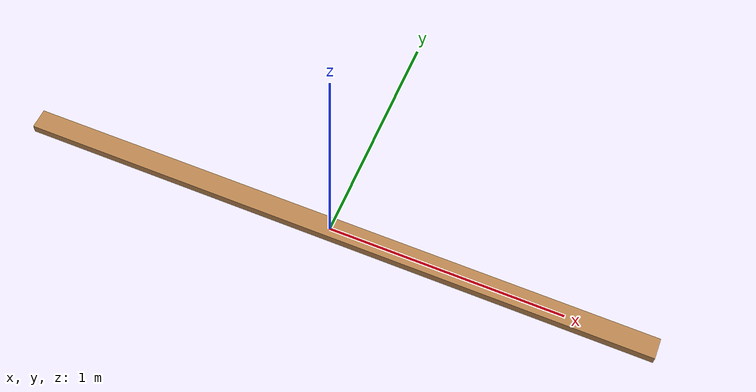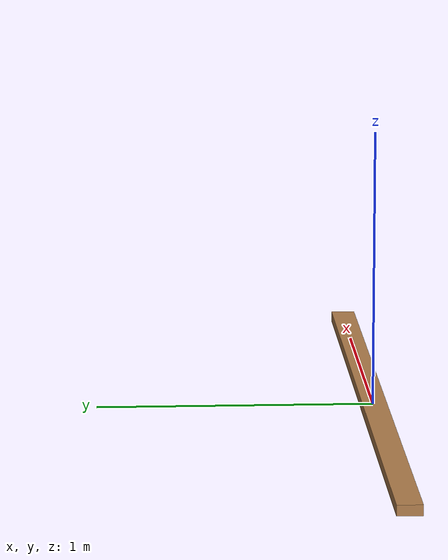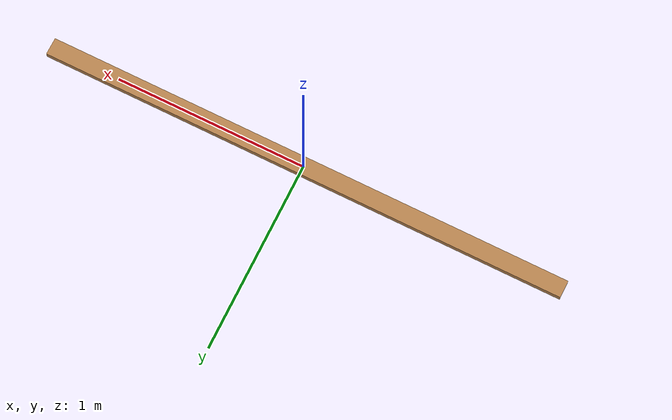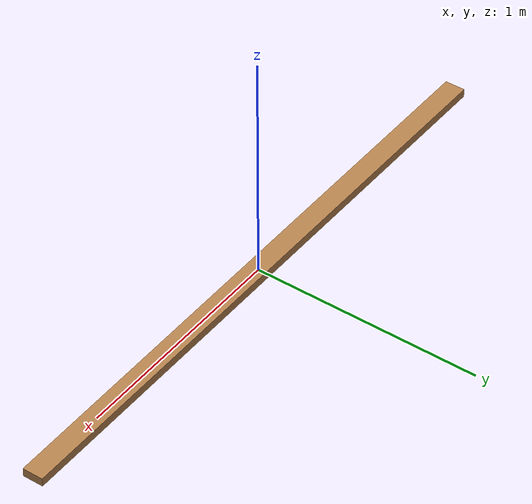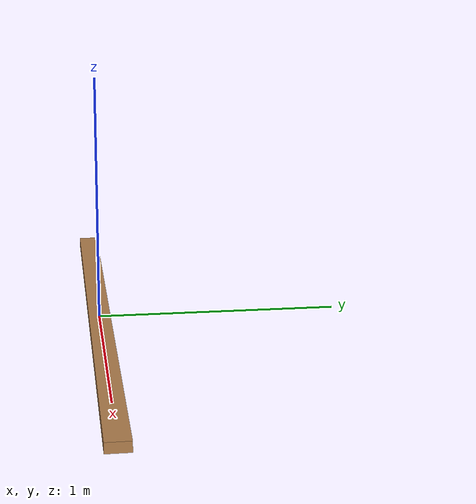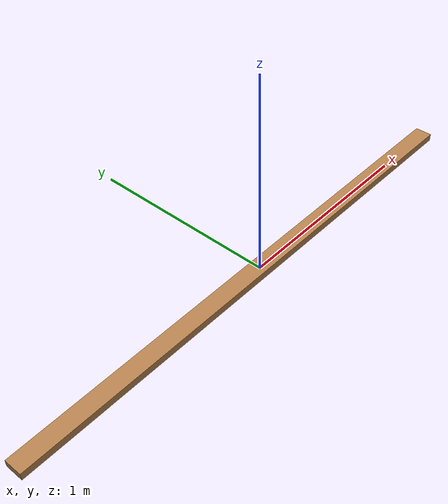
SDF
<?xml version='1.0'?>
<sdf version="1.6">
    <model name="frame">
        <static>true</static>
        <pose>0 0 0 0 0 0</pose>
        <link name="link">
            <collision name="collision">
                <geometry>
                    <box>
                        <size>2.743 0.089 0.038</size>
                    </box>
                </geometry>
            </collision>
            <visual name="visual">
                <geometry>
                    <box>
                        <size>2.743 0.089 0.038</size>
                    </box>
                </geometry>
                <material>
                    <script>
                        <uri>file://media/materials/scripts/gazebo.material</uri>
                        <name>Gazebo/Wood</name>
                    </script>
                </material>
            </visual>
        </link>
    </model>
</sdf>
